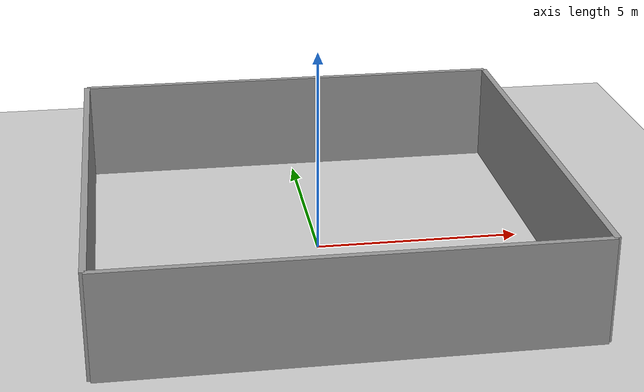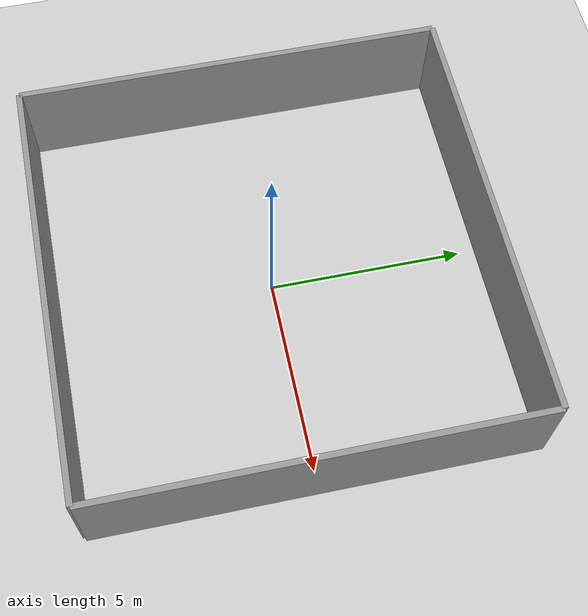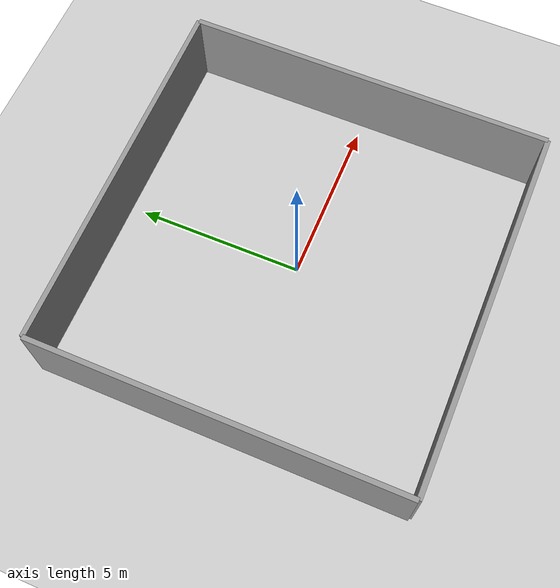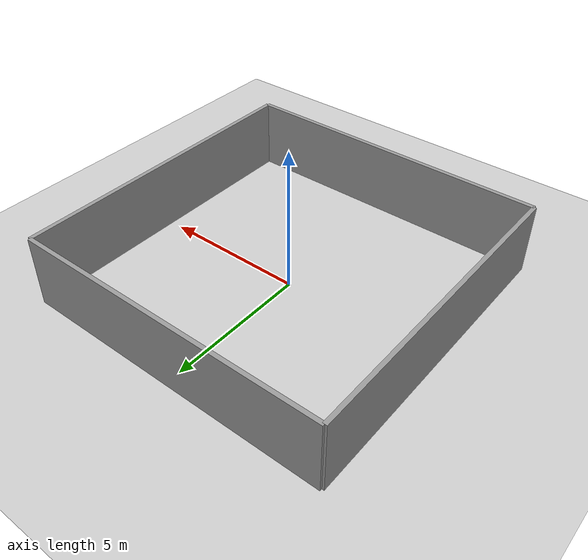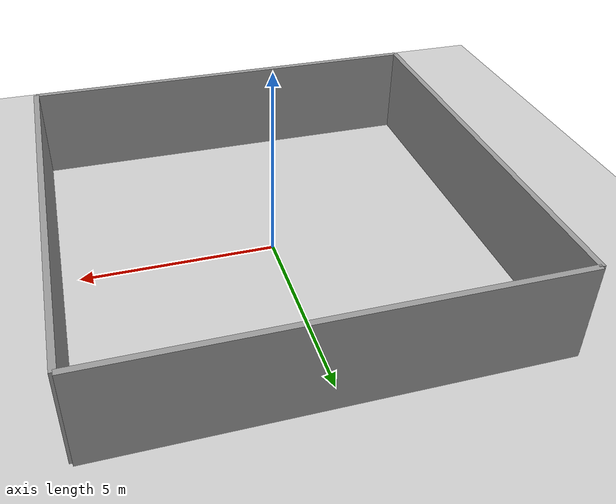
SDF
<sdf version='1.6'>
  <world name='default'>
    <include>
      <uri>model://ground_plane</uri>
    </include>

    <include>
      <uri>model://sun</uri>
    </include>

    <model name='white-wall'>
      <pose frame=''>0 0 0 0 -0 0</pose>

      <link name='Wall_0'>
        <collision name='Wall_0_Collision'>
          <geometry>
            <box>
              <size>11 0.15 2.5</size>
            </box>
          </geometry>
          <pose frame=''>0 0 1.25 0 -0 0</pose>
          <max_contacts>10</max_contacts>
        </collision>
        <visual name='Wall_0_Visual'>
          <pose frame=''>0 0 1.25 0 -0 0</pose>
          <geometry>
            <box>
              <size>11 0.15 2.5</size>
            </box>
          </geometry>
          <material>
            <script>
              <uri>file://media/materials/scripts/gazebo.material</uri>
              <name>Gazebo/Grey</name>
            </script>
            <ambient>1 1 1 1</ambient>
          </material>
        </visual>
        <pose frame=''>-0 5.5 0 0 -0 0</pose>
      </link>

      <link name='Wall_1'>
        <collision name='Wall_1_Collision'>
          <geometry>
            <box>
              <size>0.15 11 2.5</size>
            </box>
          </geometry>
          <pose frame=''>0 0 1.25 0 -0 0</pose>
          <max_contacts>10</max_contacts>
        </collision>
        <visual name='Wall_1_Visual'>
          <pose frame=''>0 0 1.25 0 -0 0</pose>
          <geometry>
            <box>
              <size>0.15 11 2.5</size>
            </box>
          </geometry>
          <material>
            <script>
              <uri>file://media/materials/scripts/gazebo.material</uri>
              <name>Gazebo/Grey</name>
            </script>
            <ambient>1 1 1 1</ambient>
          </material>
        </visual>
        <pose frame=''>-5.5 0 0 0 -0 0</pose>
      </link>

      <link name='Wall_2'>
        <collision name='Wall_2_Collision'>
          <geometry>
            <box>
              <size>11 0.15 2.5</size>
            </box>
          </geometry>
          <pose frame=''>0 0 1.25 0 -0 0</pose>
          <max_contacts>10</max_contacts>
        </collision>
        <visual name='Wall_2_Visual'>
          <pose frame=''>0 0 1.25 0 -0 0</pose>
          <geometry>
            <box>
              <size>11 0.15 2.5</size>
            </box>
          </geometry>
          <material>
            <script>
              <uri>file://media/materials/scripts/gazebo.material</uri>
              <name>Gazebo/Grey</name>
            </script>
            <ambient>1 1 1 1</ambient>
          </material>
        </visual>
        <pose frame=''>-0 -5.5 0 0 -0 0</pose>
      </link>

      <link name='Wall_3'>
        <collision name='Wall_3_Collision'>
          <geometry>
            <box>
              <size>0.15 11 2.5</size>
            </box>
          </geometry>
          <pose frame=''>0 0 1.25 0 -0 0</pose>
          <max_contacts>10</max_contacts>
        </collision>
        <visual name='Wall_3_Visual'>
          <pose frame=''>0 0 1.25 0 -0 0</pose>
          <geometry>
            <box>
              <size>0.15 11 2.5</size>
            </box>
          </geometry>
          <material>
            <script>
              <uri>file://media/materials/scripts/gazebo.material</uri>
              <name>Gazebo/Grey</name>
            </script>
            <ambient>1 1 1 1</ambient>
          </material>
        </visual>
        <pose frame=''>5.5 0 0 0 -0 0</pose>
      </link>
      <static>1</static>
    </model>
  </world>
</sdf>
